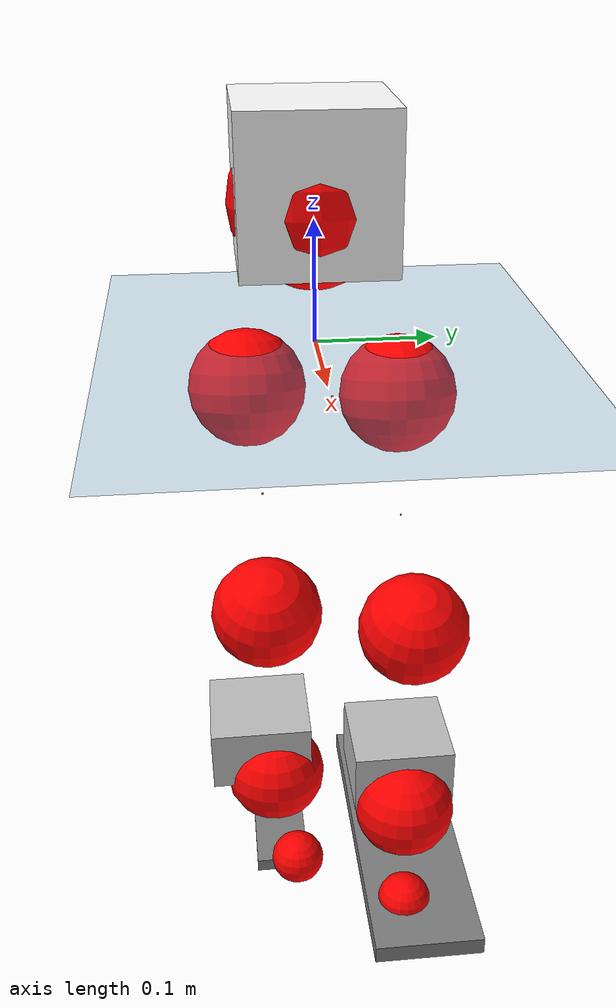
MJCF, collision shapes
<mujoco model="pi_12dof_release_v1">
  <compiler angle="radian" assetdir="assets" balanceinertia="true" inertiafromgeom="false"/>

  <option timestep="0.005" density="1.2" viscosity="2e-05"/>

  <size nkey="1"/>

  <visual>
    <quality shadowsize="8192"/>
    <map shadowclip="0.5"/>
  </visual>

  <default>
    <default class="/">
      <joint armature="0.01" damping="0.01" frictionloss="0.01"/>
      <geom contype="0" conaffinity="0" group="1" solref="-1000 -80"/>
      <site size="0.01 0.005 0.005" group="5"/>
      <general forcelimited="true" biastype="affine" gainprm="20" biasprm="0 -20 -0.5"/>
      <default class="foot">
        <geom size="0.0845 0.036 0.005" type="box" condim="6" group="4" priority="1" friction="0.9 0.2 0.2" solimp="0.015 1 0.005"/>
      </default>
      <default class="reward_collision_sphere">
        <geom group="5" rgba="1 0 0 1"/>
      </default>
    </default>
  </default>

  <asset>
    <texture type="skybox" colorspace="auto" name="//unnamed_texture_0" builtin="gradient" rgb1="0.95 0.95 0.95" rgb2="0.95 0.95 0.95" width="100" height="600"/>
    <texture type="2d" colorspace="auto" name="texplane" builtin="checker" rgb1="0.345 0.575 0.748" rgb2="0.345 0.575 0.748" markrgb="1 1 1" width="512" height="512"/>
    <material name="MatPlane" class="/" texture="texplane" texuniform="true" texrepeat="2 2" specular="0.9"/>
    <mesh name="baselink_1" class="/" file="baselink_1.STL"/>
    <mesh name="r_hip_pitch_link" class="/" file="r_hip_pitch_link.STL"/>
    <mesh name="r_hip_roll_link" class="/" file="r_hip_roll_link.STL"/>
    <mesh name="r_thigh_link" class="/" file="r_thigh_link.STL"/>
    <mesh name="r_calf_link" class="/" file="r_calf_link.STL"/>
    <mesh name="r_ankle_pitch_link" class="/" file="r_ankle_pitch_link.STL"/>
    <mesh name="r_ankle_roll_link" class="/" file="r_ankle_roll_link.STL"/>
    <mesh name="l_hip_pitch_link" class="/" file="l_hip_pitch_link.STL"/>
    <mesh name="l_hip_roll_link" class="/" file="l_hip_roll_link.STL"/>
    <mesh name="l_thigh_link" class="/" file="l_thigh_link.STL"/>
    <mesh name="l_calf_link" class="/" file="l_calf_link.STL"/>
    <mesh name="l_ankle_pitch_link" class="/" file="l_ankle_pitch_link.STL"/>
    <mesh name="l_ankle_roll_link" class="/" file="l_ankle_roll_link.STL"/>
  </asset>

  <worldbody>
    <geom name="floor" class="/" size="100 100 0.125" type="plane" group="0" material="MatPlane"/>
    <light name="toplight_shadow" class="/" pos="0 0 5" dir="0.0990148 0.0990148 -0.990148" type="directional" ambient="0.04 0.04 0.04" diffuse="0.55 0.55 0.55" specular="0.12 0.12 0.12"/>
    <light name="toplight_fill" class="/" pos="0 0 5" dir="0.0990148 0.0990148 -0.990148" type="directional" castshadow="false" ambient="0.04 0.04 0.04" diffuse="0.3 0.3 0.3" specular="0.08 0.08 0.08"/>
    <body name="trunk" pos="0.000799335 -0.000754185 0.00707921" quat="1 0.000166198 0.00016258 6.07109e-05">
      <inertial pos="0.0116562 0.00972248 0.0579181" quat="0.686318 0.0142037 0.00437547 0.72715" mass="4.0708" diaginertia="0.0479833 0.00174408 0.0305735"/>
      <joint name="//unnamed_joint_0" type="free"/>
      <geom name="//unnamed_geom_1" class="/" type="mesh" density="0" rgba="1 1 1 1" mesh="baselink_1"/>
      <geom name="//unnamed_geom_2" class="/" size="0.0616226 0.0616226 0.0616226" pos="0 0 0.122592" type="box" rgba="1 1 1 1"/>
      <geom name="//unnamed_geom_3" class="reward_collision_sphere" size="0.0677848" pos="0 0 0.107268"/>
      <site name="imu" class="/" pos="0.0594606 -0.000352996 -0.0486043" size="0.0123245"/>
      <camera name="track" class="/" pos="0 -1.47664 0" quat="0.707107 0.707107 0 0" mode="trackcom"/>
      <camera name="ego_camera" class="/" pos="0.106997 0 0.275832" quat="-0.5 -0.5 0.5 0.5"/>
      <body name="r_hip_pitch_link" pos="-0.000978631 -0.0139054 -0.0495906" quat="0.992329 0.000962004 -0.123612 -0.00169886">
        <inertial pos="-0.00865124 -0.036182 -0.00147529" quat="-0.0446295 0.715175 -0.0293981 0.696899" mass="0.76718" diaginertia="0.00071365 2.06972e-05 0.000667084"/>
        <joint name="r_hip_pitch_joint" class="/" pos="0 0 0" axis="-0.0506725 -0.998079 0.0356373" range="-1.73332 1.46407" armature="0.0149899" damping="0.068237" frictionloss="0.0140746"/>
        <geom name="//unnamed_geom_4" class="/" type="mesh" density="0" rgba="0.75294 0.75294 0.75294 1" mesh="r_hip_pitch_link"/>
        <geom name="//unnamed_geom_5" class="/" size="0.000616226 0.000616226 0.000616226" type="box" rgba="0.75294 0.75294 0.75294 1"/>
        <body name="r_hip_roll_link" pos="-0.00143686 -0.0428327 0.00390474" quat="1 0.000280639 0.000293291 8.92438e-05">
          <inertial pos="-0.00617236 0.00106888 -0.103493" quat="0.703782 -0.0738439 -0.0757197 0.702499" mass="0.681863" diaginertia="0.00226074 6.20091e-05 0.00110732"/>
          <joint name="r_hip_roll_joint" class="/" pos="0 0 0" axis="-0.998299 0.0375836 0.0445664" stiffness="0.00517958" range="0.0815529 0.434513" armature="0.0147573" damping="0.00923837" frictionloss="0.00763267"/>
          <geom name="//unnamed_geom_6" class="/" type="mesh" density="0" rgba="0.75294 0.75294 0.75294 1" mesh="r_hip_roll_link"/>
          <geom name="//unnamed_geom_7" class="/" size="0.000616226 0.000616226 0.000616226" type="box" rgba="0.75294 0.75294 0.75294 1"/>
          <geom name="//unnamed_geom_8" class="reward_collision_sphere" size="0.0492981"/>
          <body name="r_thigh_link" pos="-0.00897637 0.00892041 -0.0940874" quat="0.999991 0.00199115 0.0036647 -0.000895973">
            <inertial pos="0.00161331 0.00124804 -0.0713959" quat="0.742159 0.670212 -0.00271841 -0.00277455" mass="0.220792" diaginertia="0.000781987 2.08819e-05 0.000528566"/>
            <joint name="r_thigh_joint" class="/" pos="0 0 0" axis="0.0197309 -0.0248296 -0.999497" range="-0.36064 0.53381" armature="0.0119167" damping="0" frictionloss="0.0121504"/>
            <geom name="//unnamed_geom_9" class="/" type="mesh" density="0" rgba="0.75294 0.75294 0.75294 1" mesh="r_thigh_link"/>
            <geom name="//unnamed_geom_10" class="/" size="0.000616226 0.000616226 0.000616226" type="box" rgba="0.75294 0.75294 0.75294 1"/>
            <body name="r_calf_link" pos="0.0064344 -0.00171855 -0.106718" quat="0.9474 0.000984022 0.320049 -0.000136611">
              <inertial pos="-0.00999106 -0.000834879 -0.106096" quat="0.999981 -0.00448157 -0.00366207 -0.00225331" mass="1.43265" diaginertia="0.0201711 0.00065954 0.00136471"/>
              <joint name="r_calf_joint" class="/" pos="0 0 0" axis="0.0266211 -0.999379 -0.0230907" stiffness="0.00442013" range="-1.67436 0.542057" armature="0.016408" damping="0" frictionloss="0.0151884"/>
              <geom name="//unnamed_geom_11" class="/" type="mesh" density="0" rgba="0.75294 0.75294 0.75294 1" mesh="r_calf_link"/>
              <geom name="//unnamed_geom_12" class="/" size="0.000616226 0.000616226 0.000616226" type="box" rgba="0.75294 0.75294 0.75294 1"/>
              <geom name="//unnamed_geom_13" class="reward_collision_sphere" size="0.0492981"/>
              <body name="r_ankle_pitch_link" pos="0.00382172 -0.0104784 -0.209874" quat="0.98008 -0.00046463 -0.198603 0.000424857">
                <inertial pos="0.00626211 0.00251511 -0.000961651" quat="0.00939142 0.736728 0.0152785 0.675951" mass="0.411168" diaginertia="0.00201832 4.92917e-05 0.00105307"/>
                <joint name="r_ankle_pitch_joint" class="/" pos="0 0 0" axis="0.00598081 -0.99998 -0.00206576" stiffness="0.0357124" range="-1.26947 0.488381" armature="0.0128009" damping="0.0566169" frictionloss="0.0122875"/>
                <geom name="//unnamed_geom_14" class="/" type="mesh" density="0" rgba="0.75294 0.75294 0.75294 1" mesh="r_ankle_pitch_link"/>
                <geom name="//unnamed_geom_15" class="/" size="0.0480656 0.0492981 0.0308113" type="box" rgba="0.75294 0.75294 0.75294 1"/>
                <body name="r_ankle_roll_link" pos="0.0974814 0.0134586 -0.00338915" quat="1 0.000155312 3.17438e-05 3.37215e-06">
                  <inertial pos="-0.0353283 -0.000789252 -0.0327469" quat="0.548856 0.418124 0.43082 0.581656" mass="0.967407" diaginertia="0.00761641 0.000248951 0.00241875"/>
                  <joint name="r_ankle_roll_joint" class="/" pos="0 0 0" axis="-0.999947 0.00379793 -0.00952064" stiffness="0.00316128" range="-0.0176469 0.0833937" armature="0.0108762" damping="0.0582388" frictionloss="0.00656237"/>
                  <geom name="//unnamed_geom_16" class="/" type="mesh" density="0" rgba="0.75294 0.75294 0.75294 1" mesh="r_ankle_roll_link"/>
                  <geom name="//unnamed_geom_17" class="/" type="mesh" rgba="0.75294 0.75294 0.75294 1" mesh="r_ankle_roll_link"/>
                  <geom name="right_foot" class="foot" size="0.0963904 0.0241294 0.00620423" pos="-0.0727582 0 -0.0674257"/>
                  <geom name="//unnamed_geom_19" class="reward_collision_sphere" size="0.0492981" pos="-0.0713316 0 -0.0306481"/>
                  <geom name="//unnamed_geom_20" class="reward_collision_sphere" size="0.024649" pos="0.0213995 0.0147664 -0.0612961"/>
                  <geom name="//unnamed_geom_21" class="reward_collision_sphere" size="0.024649" pos="-0.171196 0.0147664 -0.0612961"/>
                  <site name="right_foot" class="foot" pos="-0.0727582 0 -0.0674257" size="0.0123245"/>
                </body>
              </body>
            </body>
          </body>
        </body>
      </body>
      <body name="l_hip_pitch_link" pos="0.0116076 0.0133306 -0.051374" quat="0.992236 0.000912744 -0.124368 0.000360603">
        <inertial pos="-0.00290803 0.0299149 0.00065741" quat="-0.0577413 0.692712 0.0142819 0.718757" mass="0.73417" diaginertia="0.000875614 2.20433e-05 0.00106413"/>
        <joint name="l_hip_pitch_joint" class="/" pos="0 0 0" axis="-0.0229031 0.999213 -0.0323999" stiffness="0.00949177" range="-1.04637 1.74898" armature="0.00558505" damping="0.0604005" frictionloss="0.0126697"/>
        <geom name="//unnamed_geom_22" class="/" type="mesh" density="0" rgba="0.75294 0.75294 0.75294 1" mesh="l_hip_pitch_link"/>
        <geom name="//unnamed_geom_23" class="/" size="0.000616226 0.000616226 0.000616226" type="box" rgba="0.75294 0.75294 0.75294 1"/>
        <body name="l_hip_roll_link" pos="0.00641832 0.054531 0.00128784" quat="1 -5.73085e-06 2.50756e-06 -1.30843e-05">
          <inertial pos="-0.000507523 -0.00838951 -0.0931885" quat="0.701419 -0.0780359 -0.0758442 0.704393" mass="0.723651" diaginertia="0.00195567 6.50331e-05 0.00104878"/>
          <joint name="l_hip_roll_joint" class="/" pos="0 0 0" axis="-0.998319 -0.0547348 0.0190778" range="-0.734131 -0.0143273" armature="0.0121108" damping="0.0185033" frictionloss="0.0183101"/>
          <geom name="//unnamed_geom_24" class="/" type="mesh" density="0" rgba="0.75294 0.75294 0.75294 1" mesh="l_hip_roll_link"/>
          <geom name="//unnamed_geom_25" class="/" size="0.000616226 0.000616226 0.000616226" type="box" rgba="0.75294 0.75294 0.75294 1"/>
          <geom name="//unnamed_geom_26" class="reward_collision_sphere" size="0.0492981"/>
          <body name="l_thigh_link" pos="0.00653788 4.8751e-05 -0.103068" quat="0.999999 -0.00111614 0.00129863 -3.18448e-06">
            <inertial pos="0.000427072 0.0017628 -0.0751495" quat="0.700419 0.711782 0.0496868 0.0176479" mass="0.215182" diaginertia="0.000762117 2.12199e-05 0.000572659"/>
            <joint name="l_thigh_joint" class="/" pos="0 0 0" axis="0.0133566 -0.0101925 -0.999859" range="-0.484501 0.17212" armature="0.00958083" damping="0.0512309" frictionloss="0.0084491"/>
            <geom name="//unnamed_geom_27" class="/" type="mesh" density="0" rgba="0.75294 0.75294 0.75294 1" mesh="l_thigh_link"/>
            <geom name="//unnamed_geom_28" class="/" size="0.000616226 0.000616226 0.000616226" type="box" rgba="0.75294 0.75294 0.75294 1"/>
            <body name="l_calf_link" pos="0.0012652 0.0102265 -0.103708" quat="0.94857 -0.00126685 0.316556 0.00252534">
              <inertial pos="0.0108608 0.000893846 -0.116258" quat="0.999985 3.3207e-06 -0.00470044 -0.00276736" mass="1.61212" diaginertia="0.0224397 0.000813573 0.00178373"/>
              <joint name="l_calf_joint" class="/" pos="0 0 0" axis="-0.0143152 0.999863 0.00830839" stiffness="0.0118026" range="-0.714402 1.90799" armature="0.0178888" damping="0.00376676" frictionloss="0.0183912"/>
              <geom name="//unnamed_geom_29" class="/" type="mesh" density="0" rgba="0.75294 0.75294 0.75294 1" mesh="l_calf_link"/>
              <geom name="//unnamed_geom_30" class="/" size="0.000616226 0.000616226 0.000616226" type="box" rgba="0.75294 0.75294 0.75294 1"/>
              <geom name="//unnamed_geom_31" class="reward_collision_sphere" size="0.0492981"/>
              <body name="l_ankle_pitch_link" pos="0.00212081 0.00445343 -0.225025" quat="0.980045 -0.00037448 -0.198775 0.000240095">
                <inertial pos="-0.000585519 0.000468045 -0.000680299" quat="-0.00220578 0.707397 0.00239928 0.706809" mass="0.434997" diaginertia="0.00234379 5.7285e-05 0.00115416"/>
                <joint name="l_ankle_pitch_joint" class="/" pos="0 0 0" axis="0.000117649 0.999173 0.0406634" range="-0.50548 1.29336" armature="0.0119031" damping="0.0475624" frictionloss="0.00437484"/>
                <geom name="//unnamed_geom_32" class="/" type="mesh" density="0" rgba="0.75294 0.75294 0.75294 1" mesh="l_ankle_pitch_link"/>
                <geom name="//unnamed_geom_33" class="/" size="0.0480656 0.0492981 0.0308113" type="box" rgba="0.75294 0.75294 0.75294 1"/>
                <body name="l_ankle_roll_link" pos="0.11752 0.000868216 -0.00151243" quat="0.999997 -0.00227975 9.25076e-05 0.00015668">
                  <inertial pos="-0.0306761 -0.00152133 -0.0212142" quat="0.571364 0.393922 0.425155 0.581044" mass="0.987376" diaginertia="0.00722934 0.000203754 0.0024665"/>
                  <joint name="l_ankle_roll_joint" class="/" pos="0 0 0" axis="-0.999981 0.00575112 -0.00209387" range="-0.180437 0.158521" armature="0.0138185" damping="0.0105502" frictionloss="0.0192652"/>
                  <geom name="//unnamed_geom_34" class="/" type="mesh" density="0" rgba="0.75294 0.75294 0.75294 1" mesh="l_ankle_roll_link"/>
                  <geom name="//unnamed_geom_35" class="/" type="mesh" rgba="0.75294 0.75294 0.75294 1" mesh="l_ankle_roll_link"/>
                  <geom name="left_foot" class="foot" size="0.15444 0.0502334 0.00857824" pos="-0.0727582 0 -0.0674257"/>
                  <geom name="//unnamed_geom_37" class="reward_collision_sphere" size="0.0492981" pos="-0.0713316 0 -0.0306481"/>
                  <geom name="//unnamed_geom_38" class="reward_collision_sphere" size="0.024649" pos="0.0213995 -0.0147664 -0.0612961"/>
                  <geom name="//unnamed_geom_39" class="reward_collision_sphere" size="0.024649" pos="-0.171196 -0.0147664 -0.0612961"/>
                  <site name="left_foot" class="foot" pos="-0.0727582 0 -0.0674257" size="0.0123245"/>
                </body>
              </body>
            </body>
          </body>
        </body>
      </body>
    </body>
  </worldbody>

  <contact>
    <pair class="/" geom1="floor" geom2="right_foot" name="//unnamed_contact_1"/>
    <pair class="/" geom1="floor" geom2="left_foot" name="//unnamed_contact_0"/>
  </contact>

  <actuator>
    <general name="r_hip_pitch_joint" class="/" joint="r_hip_pitch_joint" forcerange="-23.0394 23.0394" gainprm="24.8448" biasprm="0 -24.8448 -0.469965"/>
    <general name="r_hip_roll_joint" class="/" joint="r_hip_roll_joint" forcerange="-34.6037 34.6037" gainprm="24.8448" biasprm="0 -24.8448 -0.469965"/>
    <general name="r_thigh_joint" class="/" joint="r_thigh_joint" forcerange="-18.3593 18.3593" gainprm="24.8448" biasprm="0 -24.8448 -0.469965"/>
    <general name="r_calf_joint" class="/" joint="r_calf_joint" forcerange="-24.1041 24.1041" gainprm="24.8448" biasprm="0 -24.8448 -0.469965"/>
    <general name="r_ankle_pitch_joint" class="/" joint="r_ankle_pitch_joint" forcerange="-34.3283 34.3283" gainprm="24.8448" biasprm="0 -24.8448 -0.469965"/>
    <general name="r_ankle_roll_joint" class="/" joint="r_ankle_roll_joint" forcerange="-24.9001 24.9001" gainprm="24.8448" biasprm="0 -24.8448 -0.469965"/>
    <general name="l_hip_pitch_joint" class="/" joint="l_hip_pitch_joint" forcerange="-26.2452 26.2452" gainprm="24.8448" biasprm="0 -24.8448 -0.469965"/>
    <general name="l_hip_roll_joint" class="/" joint="l_hip_roll_joint" forcerange="-31.3064 31.3064" gainprm="24.8448" biasprm="0 -24.8448 -0.469965"/>
    <general name="l_thigh_joint" class="/" joint="l_thigh_joint" forcerange="-27.4624 27.4624" gainprm="24.8448" biasprm="0 -24.8448 -0.469965"/>
    <general name="l_calf_joint" class="/" joint="l_calf_joint" forcerange="-31.8524 31.8524" gainprm="24.8448" biasprm="0 -24.8448 -0.469965"/>
    <general name="l_ankle_pitch_joint" class="/" joint="l_ankle_pitch_joint" forcerange="-21.753 21.753" gainprm="24.8448" biasprm="0 -24.8448 -0.469965"/>
    <general name="l_ankle_roll_joint" class="/" joint="l_ankle_roll_joint" forcerange="-35.1155 35.1155" gainprm="24.8448" biasprm="0 -24.8448 -0.469965"/>
  </actuator>

  <sensor>
    <gyro site="imu" name="imu_angular_velocity"/>
    <velocimeter site="imu" name="imu_linear_velocity"/>
    <framelinvel objtype="site" objname="left_foot" name="left_foot_global_linear_velocity"/>
    <framelinvel objtype="site" objname="right_foot" name="right_foot_global_linear_velocity"/>
  </sensor>

  <keyframe>
    <key name="home" qpos="0 0 0.291 1 0 0 0 0.4 0 0 -0.8 0.4 0 -0.4 0 0 0.8 -0.4 0"/>
  </keyframe>
</mujoco>
